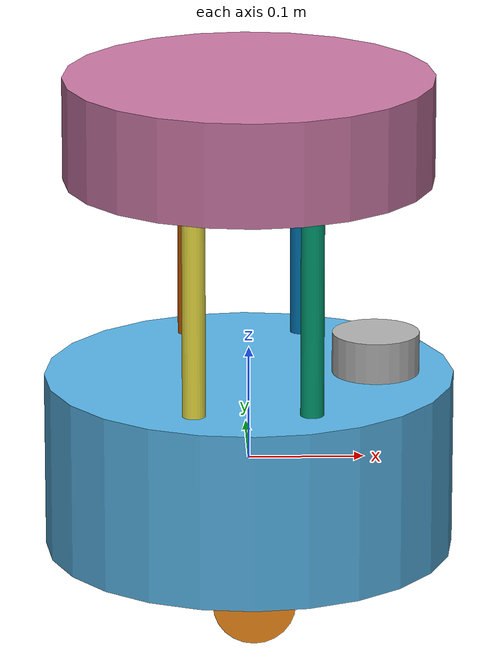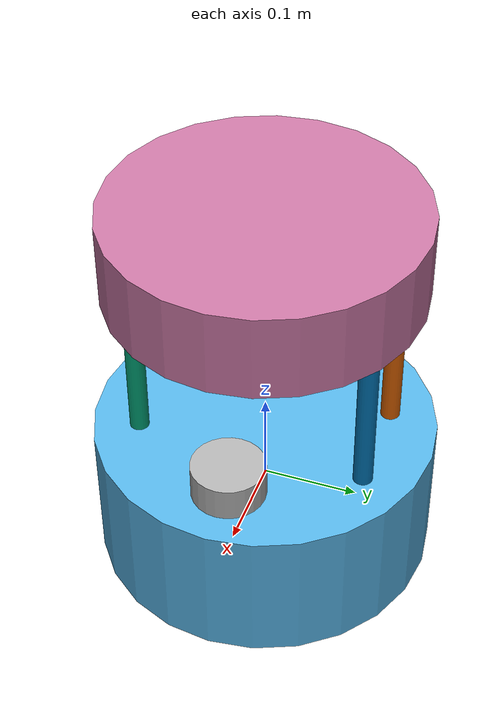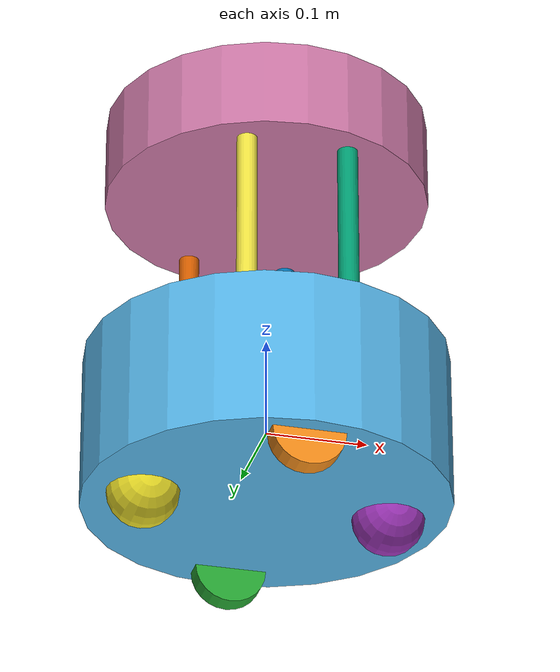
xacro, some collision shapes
<?xml version="1.0"?>

<robot xmlns:xacro="http://www.ros.org/wiki/xacro" name="my_robot">

<xacro:property name="robot_name"             value="robot"/>

<xacro:include filename="$(find barista_robot_description)/xacro/wheel.xacro" />
<xacro:include filename="$(find barista_robot_description)/xacro/standoff.xacro" />
<xacro:include filename="$(find barista_robot_description)/xacro/cup_holder_tray.xacro" />
<xacro:include filename="$(find barista_robot_description)/xacro/sensor.xacro" />

<!-- Base link  -->
<xacro:property name="l"             value="0.155"/>
<xacro:property name="r"             value="0.178"/>
<xacro:property name="mass"          value="5.5"/>

<!-- Differential Wheel -->
<xacro:property name="wheel_length"  value="0.0206"/>
<xacro:property name="wheel_radius"  value="0.0352"/>
<xacro:property name="wheel_mass"    value="2.5000"/>

<!-- Caster Wheel -->
<xacro:property name="sphere_radius" value="0.0352"/>
<xacro:property name="sphere_mass"   value="1.5000"/>

<!-- Rods -->
<xacro:property name="rod_radius"    value="0.010"/>
<xacro:property name="rod_length"    value="0.220"/>
<xacro:property name="rod_mass"      value="0.250"/>

<!-- Head -->
<xacro:property name="head_radius"   value="0.160"/>
<xacro:property name="head_length"   value="0.090"/>
<xacro:property name="head_mass"     value="1.500"/>

<!-- Sensor -->
<xacro:property name="sensor_radius" value="0.038"/>
<xacro:property name="sensor_length" value="0.042"/>
<xacro:property name="sensor_mass"   value="0.300"/>
<xacro:property name="mesh_path"     value="file://$(find barista_robot_description)/meshes/rplidar_a2.dae"/>
<xacro:property name="include_laser" value="true"/>

  <link name="base_footprint">
  </link>

<!-- Base link  -->
    <link name="base_link">
        <visual>
        <geometry>
            <cylinder length="${l}" radius="${r}"/>
        </geometry>
        </visual>

        <collision>
        <geometry>
            <cylinder length="${l}" radius="${r}"/>
        </geometry>
        </collision>

        <inertial>
        <mass value="${mass}"/>
        <origin rpy="0 0 0" xyz="0 0 0"/>
        <inertia  ixx="${mass*(3*r*r+l*l)/12}" ixy = "0" ixz = "0"
            iyy="${mass*(3*r*r+l*l)/12}" iyz = "0"
            izz="${mass*(r*r)/2}" />
        </inertial>
    </link>

  <joint name="base_link_joint" type="fixed">
    <origin rpy="0 0 0" xyz="0 0 0" />
    <parent link="base_footprint" />
    <child link="base_link" />
  </joint>

  <!-- Wheel Left -->
 <xacro:wheel  wheel_name="left_wheel"        wheel_length=  "${wheel_length}"
               wheel_radius="${wheel_radius}" wheel_mass=    "${wheel_mass}"/>

  <!-- Wheel Right -->
  <xacro:wheel wheel_name="right_wheel"       wheel_length=  "${wheel_length}"
               wheel_radius="${wheel_radius}" wheel_mass=    "${wheel_mass}"/>

  <joint name="joint_left_wheel" type="continuous">
    <origin rpy="0 0 0" xyz="0 0.15 -0.0775"/>
    <parent link="base_link"/>
    <child link="left_wheel"/>
    <axis rpy="0 0 0" xyz="0 1 0"/>
    <limit effort="10000" velocity="1000"/>
    <joint_properties damping="1.0" friction="1.0"/>
  </joint>

  <joint name="joint_right_wheel" type="continuous">
    <origin rpy="0 0 0" xyz="0 -0.15 -0.0775"/>
    <parent link="base_link"/>
    <child link="right_wheel"/>
    <axis rpy="0 0 0" xyz="0 1 0"/>
    <limit effort="10000" velocity="1000"/>
    <joint_properties damping="1.0" friction="1.0"/>
  </joint>

  <!-- Front Caster Wheel -->
  <xacro:caster_cylinder direction="front" axis="yaw"/>
  <xacro:caster_cylinder direction="front" axis="roll"/>
  <xacro:caster_sphere   direction="front" r="${sphere_radius}"
                         mass="${sphere_mass}"  />

  <joint name="front_yaw_joint" type="continuous">
    <origin rpy="0 0 0" xyz="0.12 0 -0.0775" />
    <parent link="base_link" />
    <child link="front_yaw_link" />
    <axis xyz="0 0 1" />
    <limit effort="1000.0" velocity="100.0" />
    <dynamics damping="0.0" friction="0.1"/>
  </joint>

  <joint name="front_roll_joint" type="continuous">
    <origin rpy="0 0 0" xyz="0 0 0" />
    <parent link="front_yaw_link" />
    <child link="front_roll_link" />
    <axis xyz="1 0 0" />
    <limit effort="1000.0" velocity="100.0" />
    <dynamics damping="0.0" friction="0.1"/>
  </joint>

  <joint name="front_pitch_joint" type="continuous">
    <origin rpy="0 0 0" xyz="0 0 0" />
    <parent link="front_roll_link" />
    <child link="front_pitch_link" />
    <axis xyz="0 1 0" />
    <limit effort="1000.0" velocity="100.0" />
    <dynamics damping="0.0" friction="0.1"/>
  </joint>

  <!-- Back Caster Wheel -->
  <xacro:caster_cylinder direction="back" axis="yaw"/>
  <xacro:caster_cylinder direction="back" axis="roll"/>
  <xacro:caster_sphere   direction="back" r="${sphere_radius}"
                         mass="${sphere_mass}"  />

  <joint name="back_yaw_joint" type="continuous">
    <origin rpy="0 0 0" xyz="-0.12 0 -0.0775" />
    <parent link="base_link" />
    <child link="back_yaw_link" />
    <axis xyz="0 0 1" />
    <limit effort="1000.0" velocity="100.0" />
    <dynamics damping="0.0" friction="0.1"/>
  </joint>

  <joint name="back_roll_joint" type="continuous">
    <origin rpy="0 0 0" xyz="0 0 0" />
    <parent link="back_yaw_link" />
    <child link="back_roll_link" />
    <axis xyz="1 0 0" />
    <limit effort="1000.0" velocity="100.0" />
    <dynamics damping="0.0" friction="0.1"/>
  </joint>

  <joint name="back_pitch_joint" type="continuous">
    <origin rpy="0 0 0" xyz="0 0 0" />
    <parent link="back_roll_link" />
    <child link="back_pitch_link" />
    <axis xyz="0 1 0" />
    <limit effort="1000.0" velocity="100.0" />
    <dynamics damping="0.0" friction="0.1"/>
  </joint>

  <xacro:standoff number="${1}" r="${rod_radius}" l="${rod_length}" mass="${rod_mass}"/>
  <xacro:standoff number="${2}" r="${rod_radius}" l="${rod_length}" mass="${rod_mass}"/>
  <xacro:standoff number="${3}" r="${rod_radius}" l="${rod_length}" mass="${rod_mass}"/>
  <xacro:standoff number="${4}" r="${rod_radius}" l="${rod_length}" mass="${rod_mass}"/>

  <joint name="joint_bar_1" type="fixed">
    <origin rpy="0 0 0" xyz="0.05 -0.120 0.185"/>
    <parent link="base_link"/>
    <child link="rod_1"/>
  </joint>

  <joint name="joint_bar_2" type="fixed">
    <origin rpy="0 0 0" xyz="-0.05 -0.120 0.185"/>
    <parent link="base_link"/>
    <child link="rod_2"/>
  </joint>

  <joint name="joint_bar_3" type="fixed">
    <origin rpy="0 0 0" xyz="0.05 0.120 0.185"/>
    <parent link="base_link"/>
    <child link="rod_3"/>
  </joint>

  <joint name="joint_bar_4" type="fixed">
    <origin rpy="0 0 0" xyz="-0.05 0.120 0.185"/>
    <parent link="base_link"/>
    <child link="rod_4"/>
  </joint>

  <xacro:cup_holder_tray r="${head_radius}" l="${head_length}" mass="${head_mass}"/>

  <joint name="head_joint" type="fixed">
    <origin rpy="0 0 0" xyz="0 0 0.2975"/>
    <parent link="base_link"/>
    <child link="head"/>
  </joint>

  <!-- JOINT PUBLISHER -->
  <gazebo>
    <plugin name="barista_joint_state" filename="libgazebo_ros_joint_state_publisher.so">
      <ros>
          <namespace>/${robot_name}</namespace>
          <remapping>~/out:=joint_states</remapping>
      </ros>
      <update_rate>30</update_rate>

      <joint_name>joint_left_wheel</joint_name>
      <joint_name>joint_right_wheel</joint_name>
      <joint_name>front_yaw_joint</joint_name>
      <joint_name>back_yaw_joint</joint_name>
      <joint_name>front_roll_joint</joint_name>
      <joint_name>back_roll_joint</joint_name>
      <joint_name>front_pitch_joint</joint_name>
      <joint_name>back_pitch_joint</joint_name>

    </plugin>
  </gazebo>
  <!-- Differential drive -->

  <gazebo>
    <plugin filename="libgazebo_ros_diff_drive.so" name="differential_drive_controller">
        <ros>
            <namespace>/${robot_name}</namespace>
            <remapping>/cmd_vel:=cmd_vel</remapping>
        </ros>
        <!-- wheels -->
        <left_joint>joint_left_wheel</left_joint>
        <right_joint>joint_right_wheel</right_joint>

        <!-- kinematics -->
        <wheel_separation>0.1625</wheel_separation>
        <wheel_diameter>0.06</wheel_diameter>

        <!-- limits -->
        <max_wheel_torque>1.0</max_wheel_torque>
        <max_wheel_acceleration>1.0</max_wheel_acceleration>

        <!-- output -->
        <publish_odom>true</publish_odom>
        <publish_odom_tf>true</publish_odom_tf>

        <odometry_frame>${robot_name}/odom</odometry_frame>>
        <robot_base_frame>${robot_name}/base_link</robot_base_frame>
    </plugin>
  </gazebo>

  <gazebo reference="left_wheel">
    <kp>1000000000000000000000000000.0</kp>
    <kd>1000000000000000000000000000.0</kd>
    <mu1>10.0</mu1>
    <mu2>10.0</mu2>
    <material>Gazebo/Green</material>
  </gazebo>

  <gazebo reference="right_wheel">
    <kp>1000000000000000000000000000.0</kp>
    <kd>1000000000000000000000000000.0</kd>
    <mu1>10.0</mu1>
    <mu2>10.0</mu2>
    <material>Gazebo/Orange</material>
  </gazebo>

  <gazebo reference="front_pitch_link">
    <kp>1000000000000000000000000000.0</kp>
    <kd>1000000000000000000000000000.0</kd>
    <mu1>0.5</mu1>
    <mu2>0.5</mu2>
    <material>Gazebo/Purple</material>
  </gazebo>

  <gazebo reference="back_pitch_link">
    <kp>1000000000000000000000000000.0</kp>
    <kd>1000000000000000000000000000.0</kd>
    <mu1>0.5</mu1>
    <mu2>0.5</mu2>
    <material>Gazebo/Yellow</material>
  </gazebo>

    <xacro:if value="${include_laser}">
        <xacro:laser_scanner r="${sensor_radius}"  l="${sensor_length}"
                        mass="${sensor_mass}" path="${mesh_path}"/>

        <joint name="laser_scan_link_joint" type="fixed">
            <origin rpy="0 0 0" xyz="0.11 0 0.0925"/>
            <parent link="base_link"/>
            <child link="laser_scan_link"/>
            <axis xyz="0 0 0"/>
        </joint>

        <!-- Sensors -->
        <gazebo reference="laser_scan_link">
            <sensor name="sensor_ray" type="ray">
                <pose>0 0 0 0 0 0</pose>
                <ray>
                <scan>
                    <horizontal>
                    <samples>200</samples>
                    <resolution>1.0</resolution>
                    <min_angle>-3.14</min_angle>
                    <max_angle>3.14</max_angle>
                    </horizontal>
                </scan>
                <range>
                    <min>0.04</min>
                    <max>16.0</max>
                </range>
                </ray>
                <always_on>true</always_on>
                <visualize>true</visualize>
                <update_rate>100.0</update_rate>
                <plugin name="laser" filename="libgazebo_ros_ray_sensor.so">
                <ros>
                    <namespace>/${robot_name}</namespace>
                    <remapping>~/out:=scan</remapping>
                </ros>
                <output_type>sensor_msgs/LaserScan</output_type>
                </plugin>
            </sensor>
        </gazebo>
    </xacro:if>

</robot>

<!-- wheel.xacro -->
<robot xmlns:xacro="http://www.ros.org/wiki/xacro" name="wheel">

<!-- Wheel Macro -->
<xacro:macro name="wheel" params="wheel_name wheel_length wheel_radius wheel_mass">
  <link name="${wheel_name}">
      <visual>
        <origin rpy="0 1.5707 1.5707" xyz="0 0 0"/>
        <geometry>
          <cylinder length="${wheel_length}" radius="${wheel_radius}"/>
        </geometry>
      </visual>

      <collision>
        <origin rpy="0 1.5707 1.5707" xyz="0 0 0"/>
        <geometry>
          <cylinder length="${wheel_length}" radius="${wheel_radius}"/>
        </geometry>
      </collision>

      <inertial>
        <origin rpy="0 1.5707 1.5707" xyz="0 0 0"/>
        <mass value="${wheel_mass}"/>
        <inertia ixx="0.0006927083333333334" ixy="0.0" ixz="0.0" iyy="0.0006927083333333334" iyz="0.0" izz="0.001125" />
      </inertial>
  </link>
</xacro:macro>

<!-- Caster Wheel Macro for Cylinder link -->
<xacro:macro name="caster_cylinder" params="direction axis">
  <link name= "${direction}_${axis}_link">
      <visual>
        <origin rpy="0 1.5707 1.5707" xyz="0 0 0"/>
        <geometry>
          <cylinder length="0.005" radius="0.0045000000000000005"/>
        </geometry>
      </visual>

      <collision>
        <origin rpy="0 1.5707 1.5707" xyz="0 0 0"/>
        <geometry>
          <cylinder length="0.005" radius="0.0045000000000000005"/>
        </geometry>
      </collision>

      <inertial>
          <origin rpy="0 1.5707 1.5707" xyz="0 0 0"/>
          <mass value="0.001"/>
          <inertia ixx="5.145833333333334e-09" ixy="0" ixz="0" iyy="5.145833333333334e-09" iyz="0" izz="1.0125000000000003e-08"/>
      </inertial>

  </link>
</xacro:macro>

<!-- Caster Wheel Macro for Sphere -->
<xacro:macro name="caster_sphere" params="direction r mass">
  <link name= "${direction}_pitch_link">
    <visual>
      <origin rpy="0 1.5707 1.5707" xyz="0 0 0"/>
      <geometry>
        <sphere radius="${r}"/>
      </geometry>
    </visual>

    <collision>
      <origin rpy="0 1.5707 1.5707" xyz="0 0 0"/>
      <geometry>
        <sphere radius="${r}"/>
      </geometry>
    </collision>

    <inertial>
        <origin rpy="0 1.5707 1.5707" xyz="0 0 0"/>
        <mass value="${mass}"/>
        <inertia
            ixx="${2*mass*r*r/5}" ixy = "0" ixz = "0"
            iyy="${2*mass*r*r/5}" iyz = "0"
            izz="${2*mass*r*r/5}"/>
    </inertial>
  </link>
</xacro:macro>
</robot>

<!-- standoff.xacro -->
<robot xmlns:xacro="http://www.ros.org/wiki/xacro" name="rods">

<!-- Standoff Macro -->
<xacro:macro name="standoff" params="number r l mass ">
  <link name="rod_${number}">
      <visual>
        <origin rpy="0 0 0" xyz="0 0 0"/>
        <geometry>
          <cylinder length="${l}" radius="${r}"/>
        </geometry>
      </visual>

      <collision>
        <origin rpy="0 0 0" xyz="0 0 0"/>
        <geometry>
          <cylinder length="${l}" radius="${r}"/>
        </geometry>
      </collision>

      <inertial>
        <origin rpy="0 0 0" xyz="0 0 0"/>
        <mass value="${mass}"/>
        <inertia  ixx="${mass*(3*r*r+l*l)/12}" ixy = "0" ixz = "0"
            iyy="${mass*(3*r*r+l*l)/12}" iyz = "0"
            izz="${mass*(r*r)/2}" />
      </inertial>
  </link>
</xacro:macro>

</robot>

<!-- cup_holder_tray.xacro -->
<robot xmlns:xacro="http://www.ros.org/wiki/xacro" name="cup_holder_tray">

<!-- Standoff Macro -->
<xacro:macro name="cup_holder_tray" params="r l mass">
  <link name="head">
      <visual>
        <origin rpy="0 0 0" xyz="0 0 0"/>
        <geometry>
          <cylinder length="${l}" radius="${r}"/>
        </geometry>
      </visual>

      <collision>
        <origin rpy="0 0 0" xyz="0 0 0"/>
        <geometry>
          <cylinder length="${l}" radius="${r}"/>
        </geometry>
      </collision>

      <inertial>
        <origin rpy="0 0 0" xyz="0 0 0"/>
        <mass value="${mass}"/>
        <inertia  ixx="${mass*(3*r*r+l*l)/12}" ixy = "0" ixz = "0"
            iyy="${mass*(3*r*r+l*l)/12}" iyz = "0"
            izz="${mass*(r*r)/2}" />
      </inertial>
  </link>
</xacro:macro>

</robot>

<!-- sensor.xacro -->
<robot xmlns:xacro="http://www.ros.org/wiki/xacro" name="rplidar">

<!-- Standoff Macro -->
<xacro:macro name="laser_scanner" params="r l mass path">
  <link name="laser_scan_link">
    <visual>
      <origin rpy="0 0 0" xyz="0 0 -0.021"/>
      <geometry>
        <mesh filename="${path}" scale="1 1 1"/>
      </geometry>
    </visual>

    <collision>
       <origin rpy="0 0 0" xyz="0 0 0"/>
      <geometry>
          <cylinder length="${l}" radius="${r}"/>
      </geometry>
    </collision>

      <inertial>
        <origin rpy="0 0 0" xyz="0 0 0"/>
        <mass value="${mass}"/>
        <inertia  ixx="${mass*(3*r*r+l*l)/12}" ixy = "0" ixz = "0"
            iyy="${mass*(3*r*r+l*l)/12}" iyz = "0"
            izz="${mass*(r*r)/2}" />
      </inertial>
  </link>
</xacro:macro>

</robot>
